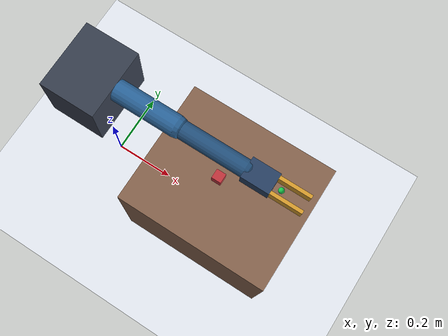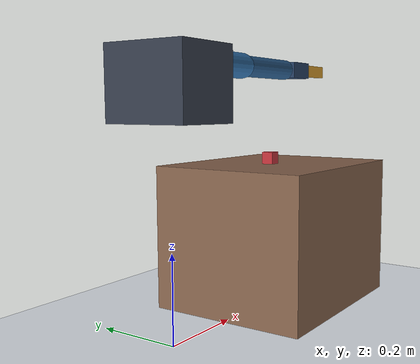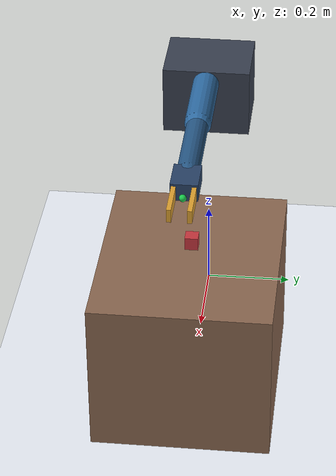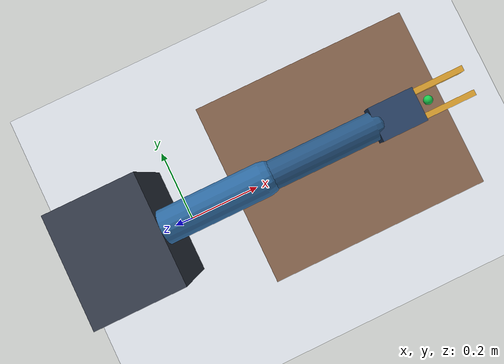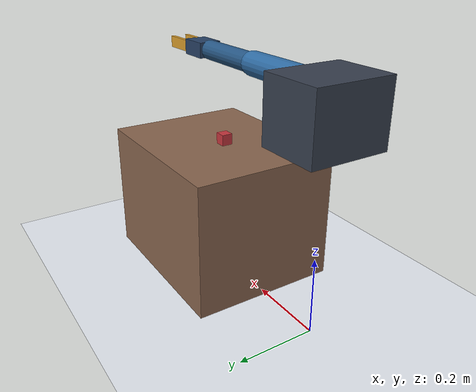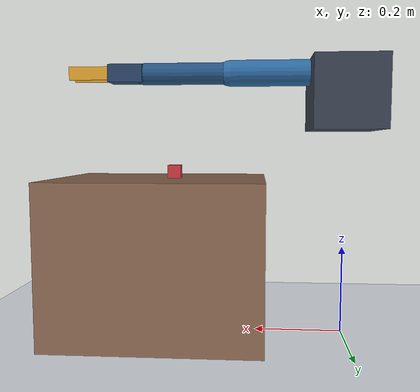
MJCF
<mujoco model="fixed_base_grasp_baseline">
  <compiler angle="radian" autolimits="true" inertiafromgeom="true" />
  <option
    timestep="0.002"
    integrator="implicitfast"
    gravity="0 0 -9.81"
    iterations="80"
    ls_iterations="20"
  />

  <visual>
    <headlight ambient="0.45 0.45 0.45" diffuse="0.7 0.7 0.7" specular="0.15 0.15 0.15" />
    <rgba haze="0.15 0.2 0.25 1" />
  </visual>

  <default>
    <joint damping="3.0" armature="0.02" />
    <geom friction="1.0 0.05 0.01" condim="3" solref="0.02 1" solimp="0.9 0.95 0.002" />
    <position kp="140" dampratio="1.0" />
  </default>

  <worldbody>
    <light pos="0 0 2.0" dir="0 0 -1" diffuse="0.9 0.9 0.9" />
    <geom name="floor" type="plane" pos="0 0 0" size="0 0 0.05" rgba="0.92 0.94 0.97 1" />

    <body name="table" pos="0.42 0 0.18">
      <geom
        name="table_geom"
        type="box"
        size="0.24 0.20 0.18"
        rgba="0.54 0.40 0.31 1"
        friction="1.2 0.06 0.01"
      />
    </body>

    <body name="robot_base" pos="0 0 0.55">
      <geom name="base_geom" type="box" size="0.08 0.10 0.08" rgba="0.22 0.25 0.31 1" />

      <body name="shoulder_yaw_link" pos="0.04 0 0.05">
        <joint name="shoulder_yaw" type="hinge" axis="0 0 1" range="-1.0 1.0" />
        <geom name="shoulder_geom" type="sphere" size="0.03" rgba="0.24 0.29 0.38 1" />

        <body name="upper_arm_link">
          <joint name="shoulder_pitch" type="hinge" axis="0 1 0" range="-0.7 1.3" />
          <geom
            name="upper_arm_geom"
            type="capsule"
            fromto="0 0 0 0.22 0 0"
            size="0.03"
            rgba="0.18 0.42 0.64 1"
          />

          <body name="forearm_link" pos="0.22 0 0">
            <joint name="elbow_pitch" type="hinge" axis="0 1 0" range="0.0 2.1" />
            <geom
              name="forearm_geom"
              type="capsule"
              fromto="0 0 0 0.20 0 0"
              size="0.025"
              rgba="0.15 0.34 0.52 1"
            />

            <body name="wrist_link" pos="0.20 0 0">
              <geom
                name="palm_geom"
                type="box"
                pos="0.04 0 0"
                size="0.04 0.03 0.02"
                rgba="0.16 0.26 0.40 1"
              />
              <site name="gripper_center" pos="0.10 0 0" size="0.008" rgba="0.1 0.8 0.3 1" />

              <body name="left_finger" pos="0.08 0.022 0">
                <joint
                  name="left_finger_slide"
                  type="slide"
                  axis="0 1 0"
                  range="0.0 0.02"
                  damping="5.0"
                />
                <geom
                  name="left_finger_geom"
                  type="box"
                  pos="0.045 0 0"
                  size="0.045 0.005 0.015"
                  rgba="0.87 0.63 0.18 1"
                  friction="2.2 0.08 0.02"
                />
              </body>

              <body name="right_finger" pos="0.08 -0.022 0">
                <joint
                  name="right_finger_slide"
                  type="slide"
                  axis="0 -1 0"
                  range="0.0 0.02"
                  damping="5.0"
                />
                <geom
                  name="right_finger_geom"
                  type="box"
                  pos="0.045 0 0"
                  size="0.045 0.005 0.015"
                  rgba="0.87 0.63 0.18 1"
                  friction="2.2 0.08 0.02"
                />
              </body>
            </body>
          </body>
        </body>
      </body>
    </body>

    <body name="cube" pos="0.39 0 0.375">
      <freejoint name="cube_free" />
      <geom
        name="cube_geom"
        type="box"
        size="0.015 0.015 0.015"
        mass="0.08"
        rgba="0.78 0.21 0.24 1"
        friction="1.5 0.08 0.02"
      />
    </body>
  </worldbody>

  <actuator>
    <position name="shoulder_yaw_act" joint="shoulder_yaw" ctrlrange="-1.0 1.0" kp="120" />
    <position name="shoulder_pitch_act" joint="shoulder_pitch" ctrlrange="-0.7 1.3" kp="160" />
    <position name="elbow_pitch_act" joint="elbow_pitch" ctrlrange="0.0 2.1" kp="140" />
    <position
      name="left_finger_act"
      joint="left_finger_slide"
      ctrlrange="0.0 0.02"
      kp="120"
    />
    <position
      name="right_finger_act"
      joint="right_finger_slide"
      ctrlrange="0.0 0.02"
      kp="120"
    />
  </actuator>
</mujoco>
